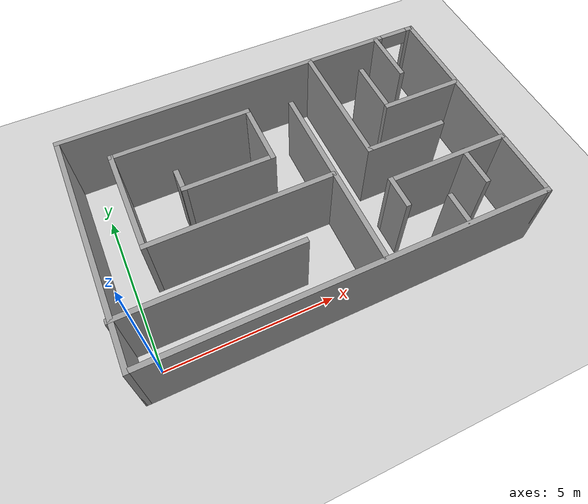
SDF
<sdf version="1.7">
 <world name="default">
  <light name="sun" type="directional">
   <pose>0 0 10 0 -0 0</pose>
   <diffuse>0.8 0.8 0.8 1</diffuse>
   <specular>0.2 0.2 0.2 1</specular>
   <attenuation>
    <range>1000</range>
    <constant>0.9</constant>
    <linear>0.01</linear>
    <quadratic>0.001</quadratic>
   </attenuation>
   <direction>-0.5 0.1 -0.9</direction>
   <spot><inner_angle>0</inner_angle><outer_angle>0</outer_angle><falloff>0</falloff></spot>
  </light>
  <model name="ground_plane">
   <static>1</static>
   <link name="link">
    <collision name="collision">
     <geometry><plane><normal>0 0 1</normal><size>100 100</size></plane></geometry>
     <surface><friction><ode><mu>100</mu><mu2>50</mu2></ode></friction></surface>
    </collision>
    <visual name="visual">
     <cast_shadows>0</cast_shadows>
     <geometry><plane><normal>0 0 1</normal><size>100 100</size></plane></geometry>
     <material>
      <script><uri>file://media/materials/scripts/gazebo.material</uri><name>Gazebo/Grey</name></script>
     </material>
    </visual>
   </link>
  </model>
  <gravity>0 0 -9.8</gravity>
  <magnetic_field>6e-06 2.3e-05 -4.2e-05</magnetic_field>
  <atmosphere type="adiabatic"/>
  <physics type="ode">
   <max_step_size>0.001</max_step_size>
   <real_time_factor>1</real_time_factor>
   <real_time_update_rate>1000</real_time_update_rate>
  </physics>
  <scene><ambient>0.4 0.4 0.4 1</ambient><background>0.7 0.7 0.7 1</background><shadows>1</shadows></scene>
  <audio><device>default</device></audio>
  <spherical_coordinates>
   <surface_model>EARTH_WGS84</surface_model>
   <latitude_deg>0</latitude_deg>
   <longitude_deg>0</longitude_deg>
   <elevation>0</elevation>
   <heading_deg>0</heading_deg>
  </spherical_coordinates>
  <model name="my_robot">
   <link name="base_footlink">
    <inertial>
     <pose>0.022463 0 0.208955 0 -0 0</pose>
     <mass>6.7</mass>
     <inertia>
      <ixx>0.699464</ixx>
      <ixy>0</ixy>
      <ixz>0.0143478</ixz>
      <iyy>0.931095</iyy>
      <iyz>-4.72128e-19</iyz>
      <izz>0.368714</izz>
     </inertia>
    </inertial>
    <collision name="base_footlink_fixed_joint_lump__base_link_collision">
     <pose>0 0 0.2 0 -0 0</pose>
     <geometry><box><size>0.6 0.4 0.2</size></box></geometry>
    </collision>
    <collision name="base_footlink_fixed_joint_lump__camera_link_collision_1">
     <pose>0.305 0 0.2 0 -0 0</pose>
     <geometry><box><size>0.01 0.1 0.05</size></box></geometry>
    </collision>
    <collision name="base_footlink_fixed_joint_lump__caster_wheel_link_collision_2">
     <pose>0.2 0 0.05 0 -0 0</pose>
     <geometry><sphere><radius>0.05</radius></sphere></geometry>
     <surface><friction><ode><mu>0.1</mu><mu2>0.1</mu2></ode></friction></surface>
    </collision>
    <collision name="base_footlink_fixed_joint_lump__imu_link_collision_3">
     <pose>0.2 0 0.3 3.14159 1.57079 3.14159</pose>
     <geometry><box><size>0.01 0.1 0.05</size></box></geometry>
    </collision>
    <collision name="base_footlink_fixed_joint_lump__lidar_link_collision_4">
     <pose>0 0 0.325 0 -0 0</pose>
     <geometry><cylinder><length>0.05</length><radius>0.05</radius></cylinder></geometry>
    </collision>
    <visual name="base_footlink_fixed_joint_lump__base_link_visual">
     <pose>0 0 0.2 0 -0 0</pose>
     <geometry><box><size>0.6 0.4 0.2</size></box></geometry>
     <material>
      <script><name>Gazebo/Blue</name><uri>file://media/materials/scripts/gazebo.material</uri></script>
     </material>
    </visual>
    <visual name="base_footlink_fixed_joint_lump__camera_link_visual_1">
     <pose>0.305 0 0.2 0 -0 0</pose>
     <geometry><box><size>0.01 0.1 0.05</size></box></geometry>
     <material>
      <script><name>Gazebo/Red</name><uri>file://media/materials/scripts/gazebo.material</uri></script>
     </material>
    </visual>
    <visual name="base_footlink_fixed_joint_lump__caster_wheel_link_visual_2">
     <pose>0.2 0 0.05 0 -0 0</pose>
     <geometry><sphere><radius>0.05</radius></sphere></geometry>
     <material>
      <script><name>Gazebo/Gray</name><uri>file://media/materials/scripts/gazebo.material</uri></script>
     </material>
    </visual>
    <visual name="base_footlink_fixed_joint_lump__imu_link_visual_3">
     <pose>0.2 0 0.3 3.14159 1.57079 3.14159</pose>
     <geometry><box><size>0.01 0.1 0.05</size></box></geometry>
     <material>
      <script><name>Gazebo/Red</name><uri>file://media/materials/scripts/gazebo.material</uri></script>
     </material>
    </visual>
    <visual name="base_footlink_fixed_joint_lump__lidar_link_visual_4">
     <pose>0 0 0.325 0 -0 0</pose>
     <geometry><cylinder><length>0.05</length><radius>0.05</radius></cylinder></geometry>
     <material>
      <script><name>Gazebo/Red</name><uri>file://media/materials/scripts/gazebo.material</uri></script>
     </material>
    </visual>
    <sensor name="camera_sensor" type="camera">
     <visualize>1</visualize>
     <update_rate>10</update_rate>
     <plugin name="camera_controller" filename="libgazebo_ros_camera.so">
      <frame_name>camera_link</frame_name>
     </plugin>
     <pose>0.305 0 0.2 0 -0 0</pose>
     <camera>
      <horizontal_fov>1.047</horizontal_fov>
      <image><width>320</width><height>240</height></image>
      <clip><near>0.1</near><far>100</far></clip>
     </camera>
    </sensor>
    <sensor name="my_imu" type="imu">
     <always_on>1</always_on>
     <update_rate>100</update_rate>
     <plugin name="imu_link" filename="libgazebo_ros_imu_sensor.so">
      <ros><remapping>~/out:=imu</remapping></ros>
     </plugin>
     <pose>0.2 0 0.3 3.14159 1.57079 3.14159</pose>
    </sensor>
    <sensor name="laser" type="ray">
     <visualize>1</visualize>
     <update_rate>10</update_rate>
     <ray>
      <scan>
       <horizontal>
        <samples>360</samples>
        <resolution>1</resolution>
        <min_angle>-3.14</min_angle>
        <max_angle>3.14</max_angle>
       </horizontal>
       <vertical><samples>1</samples><min_angle>0</min_angle><max_angle>0</max_angle></vertical>
      </scan>
      <range><min>0.3</min><max>12</max><resolution>0.01</resolution></range>
      <noise><type>gaussian</type><mean>0</mean><stddev>0.01</stddev></noise>
     </ray>
     <plugin name="lidar" filename="libgazebo_ros_ray_sensor.so">
      <ros><remapping>~/out:=scan</remapping></ros>
      <output_type>sensor_msgs/LaserScan</output_type>
      <frame_name>lidar_link</frame_name>
     </plugin>
     <pose>0 0 0.325 0 -0 0</pose>
    </sensor>
   </link>
   <joint name="base_left_wheel_joint" type="revolute">
    <pose relative_to="base_footlink">-0.15 -0.225 0.1 0 -0 0</pose>
    <parent>base_footlink</parent>
    <child>left_wheel_link</child>
    <axis>
     <xyz>0 1 0</xyz>
     <limit><lower>-1e+16</lower><upper>1e+16</upper></limit>
     <dynamics><spring_reference>0</spring_reference><spring_stiffness>0</spring_stiffness></dynamics>
    </axis>
   </joint>
   <link name="left_wheel_link">
    <pose relative_to="base_left_wheel_joint">0 0 0 0 -0 0</pose>
    <inertial>
     <pose>0 0 0 1.5708 -0 0</pose>
     <mass>1</mass>
     <inertia><ixx>0.0108333</ixx><ixy>0</ixy><ixz>0</ixz><iyy>0.0108333</iyy><iyz>0</iyz><izz>0.02</izz></inertia>
    </inertial>
    <collision name="left_wheel_link_collision">
     <pose>0 0 0 1.5708 -0 0</pose>
     <geometry><cylinder><length>0.05</length><radius>0.1</radius></cylinder></geometry>
    </collision>
    <visual name="left_wheel_link_visual">
     <pose>0 0 0 1.5708 -0 0</pose>
     <geometry><cylinder><length>0.05</length><radius>0.1</radius></cylinder></geometry>
     <material>
      <script><name>Gazebo/Gray</name><uri>file://media/materials/scripts/gazebo.material</uri></script>
     </material>
    </visual>
   </link>
   <joint name="base_right_wheel_joint" type="revolute">
    <pose relative_to="base_footlink">-0.15 0.225 0.1 0 -0 0</pose>
    <parent>base_footlink</parent>
    <child>right_wheel_link</child>
    <axis>
     <xyz>0 1 0</xyz>
     <limit><lower>-1e+16</lower><upper>1e+16</upper></limit>
     <dynamics><spring_reference>0</spring_reference><spring_stiffness>0</spring_stiffness></dynamics>
    </axis>
   </joint>
   <link name="right_wheel_link">
    <pose relative_to="base_right_wheel_joint">0 0 0 0 -0 0</pose>
    <inertial>
     <pose>0 0 0 1.5708 -0 0</pose>
     <mass>1</mass>
     <inertia><ixx>0.0108333</ixx><ixy>0</ixy><ixz>0</ixz><iyy>0.0108333</iyy><iyz>0</iyz><izz>0.02</izz></inertia>
    </inertial>
    <collision name="right_wheel_link_collision">
     <pose>0 0 0 1.5708 -0 0</pose>
     <geometry><cylinder><length>0.05</length><radius>0.1</radius></cylinder></geometry>
    </collision>
    <visual name="right_wheel_link_visual">
     <pose>0 0 0 1.5708 -0 0</pose>
     <geometry><cylinder><length>0.05</length><radius>0.1</radius></cylinder></geometry>
     <material>
      <script><name>Gazebo/Gray</name><uri>file://media/materials/scripts/gazebo.material</uri></script>
     </material>
    </visual>
   </link>
   <static>0</static>
   <plugin name="diff_drive_controller" filename="libgazebo_ros_diff_drive.so">
    <update_rate>50</update_rate>
    <left_joint>base_left_wheel_joint</left_joint>
    <right_joint>base_right_wheel_joint</right_joint>
    <wheel_separation>0.45</wheel_separation>
    <wheel_diameter>0.2</wheel_diameter>
    <publish_odom>1</publish_odom>
    <publish_odom_tf>1</publish_odom_tf>
    <publish_wheel_tf>1</publish_wheel_tf>
    <odometry_topic>odom</odometry_topic>
    <odometry_frame>odom</odometry_frame>
    <robot_base_frame>base_footlink</robot_base_frame>
   </plugin>
   <pose>0.005848 5e-06 0 0 0 -0.003963</pose>
  </model>
  <model name="Untitled">
   <pose>5.20563 2.96955 0 0 -0 0</pose>
   <link name="Wall_10">
    <collision name="Wall_10_Collision">
     <geometry><box><size>11.75 0.15 2.5</size></box></geometry>
     <pose>0 0 1.25 0 -0 0</pose>
    </collision>
    <visual name="Wall_10_Visual">
     <pose>0 0 1.25 0 -0 0</pose>
     <geometry><box><size>11.75 0.15 2.5</size></box></geometry>
     <material>
      <script><uri>file://media/materials/scripts/gazebo.material</uri><name>Gazebo/Grey</name></script>
      <ambient>1 1 1 1</ambient>
     </material>
     <meta><layer>0</layer></meta>
    </visual>
    <pose>0.026235 -3.55 0 0 -0 0</pose>
   </link>
   <link name="Wall_11">
    <collision name="Wall_11_Collision">
     <geometry><box><size>7.25 0.15 2.5</size></box></geometry>
     <pose>0 0 1.25 0 -0 0</pose>
    </collision>
    <visual name="Wall_11_Visual">
     <pose>0 0 1.25 0 -0 0</pose>
     <geometry><box><size>7.25 0.15 2.5</size></box></geometry>
     <material>
      <script><uri>file://media/materials/scripts/gazebo.material</uri><name>Gazebo/Grey</name></script>
      <ambient>1 1 1 1</ambient>
     </material>
     <meta><layer>0</layer></meta>
    </visual>
    <pose>5.82623 0 0 0 -0 1.5708</pose>
   </link>
   <link name="Wall_12">
    <pose>0.026235 3.55 0 0 -0 3.14159</pose>
    <visual name="Wall_12_Visual_0">
     <pose>-5.73689 0 1.25 0 -0 0</pose>
     <geometry><box><size>0.276221 0.15 2.5</size></box></geometry>
     <material>
      <script><uri>file://media/materials/scripts/gazebo.material</uri><name>Gazebo/Grey</name></script>
      <ambient>1 1 1 1</ambient>
     </material>
     <meta><layer>0</layer></meta>
    </visual>
    <collision name="Wall_12_Collision_0">
     <geometry><box><size>0.276221 0.15 2.5</size></box></geometry>
     <pose>-5.73689 0 1.25 0 -0 0</pose>
    </collision>
    <visual name="Wall_12_Visual_1">
     <pose>0.588111 0 1.25 0 -0 0</pose>
     <geometry><box><size>10.5738 0.15 2.5</size></box></geometry>
     <material>
      <script><uri>file://media/materials/scripts/gazebo.material</uri><name>Gazebo/Grey</name></script>
      <ambient>1 1 1 1</ambient>
     </material>
     <meta><layer>0</layer></meta>
    </visual>
    <collision name="Wall_12_Collision_1">
     <geometry><box><size>10.5738 0.15 2.5</size></box></geometry>
     <pose>0.588111 0 1.25 0 -0 0</pose>
    </collision>
    <visual name="Wall_12_Visual_2">
     <pose>-5.14878 0 2.25 0 -0 0</pose>
     <geometry><box><size>0.9 0.15 0.5</size></box></geometry>
     <material>
      <script><uri>file://media/materials/scripts/gazebo.material</uri><name>Gazebo/Grey</name></script>
      <ambient>1 1 1 1</ambient>
     </material>
     <meta><layer>0</layer></meta>
    </visual>
    <collision name="Wall_12_Collision_2">
     <geometry><box><size>0.9 0.15 0.5</size></box></geometry>
     <pose>-5.14878 0 2.25 0 -0 0</pose>
    </collision>
   </link>
   <link name="Wall_13">
    <collision name="Wall_13_Collision">
     <geometry><box><size>7.25 0.15 2.5</size></box></geometry>
     <pose>0 0 1.25 0 -0 0</pose>
    </collision>
    <visual name="Wall_13_Visual">
     <pose>0 0 1.25 0 -0 0</pose>
     <geometry><box><size>7.25 0.15 2.5</size></box></geometry>
     <material>
      <script><uri>file://media/materials/scripts/gazebo.material</uri><name>Gazebo/Grey</name></script>
      <ambient>1 1 1 1</ambient>
     </material>
     <meta><layer>0</layer></meta>
    </visual>
    <pose>-5.77377 0 0 0 -0 -1.5708</pose>
   </link>
   <link name="Wall_16">
    <collision name="Wall_16_Collision">
     <geometry><box><size>5.25 0.15 2.5</size></box></geometry>
     <pose>0 0 1.25 0 -0 0</pose>
    </collision>
    <visual name="Wall_16_Visual">
     <pose>0 0 1.25 0 -0 0</pose>
     <geometry><box><size>5.25 0.15 2.5</size></box></geometry>
     <material>
      <script><uri>file://media/materials/scripts/gazebo.material</uri><name>Gazebo/Grey</name></script>
      <ambient>1 1 1 1</ambient>
     </material>
     <meta><layer>0</layer></meta>
    </visual>
    <pose>-3.27624 -2.22076 0 0 -0 0</pose>
   </link>
   <link name="Wall_18">
    <collision name="Wall_18_Collision">
     <geometry><box><size>5.75 0.15 2.5</size></box></geometry>
     <pose>0 0 1.25 0 -0 0</pose>
    </collision>
    <visual name="Wall_18_Visual">
     <pose>0 0 1.25 0 -0 0</pose>
     <geometry><box><size>5.75 0.15 2.5</size></box></geometry>
     <material>
      <script><uri>file://media/materials/scripts/gazebo.material</uri><name>Gazebo/Grey</name></script>
      <ambient>1 1 1 1</ambient>
     </material>
     <meta><layer>0</layer></meta>
    </visual>
    <pose>0.889948 -0.66255 0 0 -0 1.5708</pose>
   </link>
   <link name="Wall_20">
    <collision name="Wall_20_Collision">
     <geometry><box><size>5.5 0.15 2.5</size></box></geometry>
     <pose>0 0 1.25 0 -0 0</pose>
    </collision>
    <visual name="Wall_20_Visual">
     <pose>0 0 1.25 0 -0 0</pose>
     <geometry><box><size>5.5 0.15 2.5</size></box></geometry>
     <material>
      <script><uri>file://media/materials/scripts/gazebo.material</uri><name>Gazebo/Grey</name></script>
      <ambient>1 1 1 1</ambient>
     </material>
     <meta><layer>0</layer></meta>
    </visual>
    <pose>-1.83752 -0.66414 0 0 -0 3.14159</pose>
   </link>
   <link name="Wall_21">
    <collision name="Wall_21_Collision">
     <geometry><box><size>3.25 0.15 2.5</size></box></geometry>
     <pose>0 0 1.25 0 -0 0</pose>
    </collision>
    <visual name="Wall_21_Visual">
     <pose>0 0 1.25 0 -0 0</pose>
     <geometry><box><size>3.25 0.15 2.5</size></box></geometry>
     <material>
      <script><uri>file://media/materials/scripts/gazebo.material</uri><name>Gazebo/Grey</name></script>
      <ambient>1 1 1 1</ambient>
     </material>
     <meta><layer>0</layer></meta>
    </visual>
    <pose>-4.51252 0.88586 0 0 -0 1.5708</pose>
   </link>
   <link name="Wall_22">
    <collision name="Wall_22_Collision">
     <geometry><box><size>4.25 0.15 2.5</size></box></geometry>
     <pose>0 0 1.25 0 -0 0</pose>
    </collision>
    <visual name="Wall_22_Visual">
     <pose>0 0 1.25 0 -0 0</pose>
     <geometry><box><size>4.25 0.15 2.5</size></box></geometry>
     <material>
      <script><uri>file://media/materials/scripts/gazebo.material</uri><name>Gazebo/Grey</name></script>
      <ambient>1 1 1 1</ambient>
     </material>
     <meta><layer>0</layer></meta>
    </visual>
    <pose>-2.46252 2.43586 0 0 -0 0</pose>
   </link>
   <link name="Wall_23">
    <collision name="Wall_23_Collision">
     <geometry><box><size>2 0.15 2.5</size></box></geometry>
     <pose>0 0 1.25 0 -0 0</pose>
    </collision>
    <visual name="Wall_23_Visual">
     <pose>0 0 1.25 0 -0 0</pose>
     <geometry><box><size>2 0.15 2.5</size></box></geometry>
     <material>
      <script><uri>file://media/materials/scripts/gazebo.material</uri><name>Gazebo/Grey</name></script>
      <ambient>1 1 1 1</ambient>
     </material>
     <meta><layer>0</layer></meta>
    </visual>
    <pose>-0.412522 1.51086 0 0 -0 -1.5708</pose>
   </link>
   <link name="Wall_24">
    <collision name="Wall_24_Collision">
     <geometry><box><size>2.75 0.15 2.5</size></box></geometry>
     <pose>0 0 1.25 0 -0 0</pose>
    </collision>
    <visual name="Wall_24_Visual">
     <pose>0 0 1.25 0 -0 0</pose>
     <geometry><box><size>2.75 0.15 2.5</size></box></geometry>
     <material>
      <script><uri>file://media/materials/scripts/gazebo.material</uri><name>Gazebo/Grey</name></script>
      <ambient>1 1 1 1</ambient>
     </material>
     <meta><layer>0</layer></meta>
    </visual>
    <pose>-1.71252 0.58586 0 0 -0 3.14159</pose>
   </link>
   <link name="Wall_25">
    <collision name="Wall_25_Collision">
     <geometry><box><size>0.75 0.15 2.5</size></box></geometry>
     <pose>0 0 1.25 0 -0 0</pose>
    </collision>
    <visual name="Wall_25_Visual">
     <pose>0 0 1.25 0 -0 0</pose>
     <geometry><box><size>0.75 0.15 2.5</size></box></geometry>
     <material>
      <script><uri>file://media/materials/scripts/gazebo.material</uri><name>Gazebo/Grey</name></script>
      <ambient>1 1 1 1</ambient>
     </material>
     <meta><layer>0</layer></meta>
    </visual>
    <pose>-3.01252 0.88586 0 0 -0 1.5708</pose>
   </link>
   <link name="Wall_28">
    <collision name="Wall_28_Collision">
     <geometry><box><size>4 0.15 2.5</size></box></geometry>
     <pose>0 0 1.25 0 -0 0</pose>
    </collision>
    <visual name="Wall_28_Visual">
     <pose>0 0 1.25 0 -0 0</pose>
     <geometry><box><size>4 0.15 2.5</size></box></geometry>
     <material>
      <script><uri>file://media/materials/scripts/gazebo.material</uri><name>Gazebo/Grey</name></script>
      <ambient>1 1 1 1</ambient>
     </material>
     <meta><layer>0</layer></meta>
    </visual>
    <pose>2.14923 1.59099 0 0 -0 -1.5708</pose>
   </link>
   <link name="Wall_29">
    <collision name="Wall_29_Collision">
     <geometry><box><size>2.5 0.15 2.5</size></box></geometry>
     <pose>0 0 1.25 0 -0 0</pose>
    </collision>
    <visual name="Wall_29_Visual">
     <pose>0 0 1.25 0 -0 0</pose>
     <geometry><box><size>2.5 0.15 2.5</size></box></geometry>
     <material>
      <script><uri>file://media/materials/scripts/gazebo.material</uri><name>Gazebo/Grey</name></script>
      <ambient>1 1 1 1</ambient>
     </material>
     <meta><layer>0</layer></meta>
    </visual>
    <pose>3.32423 -0.334015 0 0 -0 0</pose>
   </link>
   <link name="Wall_31">
    <collision name="Wall_31_Collision">
     <geometry><box><size>2.5 0.15 2.5</size></box></geometry>
     <pose>0 0 1.25 0 -0 0</pose>
    </collision>
    <visual name="Wall_31_Visual">
     <pose>0 0 1.25 0 -0 0</pose>
     <geometry><box><size>2.5 0.15 2.5</size></box></geometry>
     <material>
      <script><uri>file://media/materials/scripts/gazebo.material</uri><name>Gazebo/Grey</name></script>
      <ambient>1 1 1 1</ambient>
     </material>
     <meta><layer>0</layer></meta>
    </visual>
    <pose>4.61217 0.874986 0 0 -0 3.14159</pose>
   </link>
   <link name="Wall_32">
    <collision name="Wall_32_Collision">
     <geometry><box><size>1.75 0.15 2.5</size></box></geometry>
     <pose>0 0 1.25 0 -0 0</pose>
    </collision>
    <visual name="Wall_32_Visual">
     <pose>0 0 1.25 0 -0 0</pose>
     <geometry><box><size>1.75 0.15 2.5</size></box></geometry>
     <material>
      <script><uri>file://media/materials/scripts/gazebo.material</uri><name>Gazebo/Grey</name></script>
      <ambient>1 1 1 1</ambient>
     </material>
     <meta><layer>0</layer></meta>
    </visual>
    <pose>3.43717 1.67499 0 0 -0 1.5708</pose>
   </link>
   <link name="Wall_34">
    <collision name="Wall_34_Collision">
     <geometry><box><size>1.75 0.15 2.5</size></box></geometry>
     <pose>0 0 1.25 0 -0 0</pose>
    </collision>
    <visual name="Wall_34_Visual">
     <pose>0 0 1.25 0 -0 0</pose>
     <geometry><box><size>1.75 0.15 2.5</size></box></geometry>
     <material>
      <script><uri>file://media/materials/scripts/gazebo.material</uri><name>Gazebo/Grey</name></script>
      <ambient>1 1 1 1</ambient>
     </material>
     <meta><layer>0</layer></meta>
    </visual>
    <pose>4.51039 2.73347 0 0 -0 -1.5708</pose>
   </link>
   <link name="Wall_36">
    <collision name="Wall_36_Collision">
     <geometry><box><size>3.75 0.15 2.5</size></box></geometry>
     <pose>0 0 1.25 0 -0 0</pose>
    </collision>
    <visual name="Wall_36_Visual">
     <pose>0 0 1.25 0 -0 0</pose>
     <geometry><box><size>3.75 0.15 2.5</size></box></geometry>
     <material>
      <script><uri>file://media/materials/scripts/gazebo.material</uri><name>Gazebo/Grey</name></script>
      <ambient>1 1 1 1</ambient>
     </material>
     <meta><layer>0</layer></meta>
    </visual>
    <pose>3.98421 -1.50366 0 0 -0 0</pose>
   </link>
   <link name="Wall_39">
    <collision name="Wall_39_Collision">
     <geometry><box><size>1 0.15 2.5</size></box></geometry>
     <pose>0 0 1.25 0 -0 0</pose>
    </collision>
    <visual name="Wall_39_Visual">
     <pose>0 0 1.25 0 -0 0</pose>
     <geometry><box><size>1 0.15 2.5</size></box></geometry>
     <material>
      <script><uri>file://media/materials/scripts/gazebo.material</uri><name>Gazebo/Grey</name></script>
      <ambient>1 1 1 1</ambient>
     </material>
     <meta><layer>0</layer></meta>
    </visual>
    <pose>2.18421 -1.92866 0 0 -0 -1.5708</pose>
   </link>
   <link name="Wall_41">
    <collision name="Wall_41_Collision">
     <geometry><box><size>1 0.15 2.5</size></box></geometry>
     <pose>0 0 1.25 0 -0 0</pose>
    </collision>
    <visual name="Wall_41_Visual">
     <pose>0 0 1.25 0 -0 0</pose>
     <geometry><box><size>1 0.15 2.5</size></box></geometry>
     <material>
      <script><uri>file://media/materials/scripts/gazebo.material</uri><name>Gazebo/Grey</name></script>
      <ambient>1 1 1 1</ambient>
     </material>
     <meta><layer>0</layer></meta>
    </visual>
    <pose>3.35605 -3.05504 0 0 -0 1.5708</pose>
   </link>
   <link name="Wall_43">
    <collision name="Wall_43_Collision">
     <geometry><box><size>1.25 0.15 2.5</size></box></geometry>
     <pose>0 0 1.25 0 -0 0</pose>
    </collision>
    <visual name="Wall_43_Visual">
     <pose>0 0 1.25 0 -0 0</pose>
     <geometry><box><size>1.25 0.15 2.5</size></box></geometry>
     <material>
      <script><uri>file://media/materials/scripts/gazebo.material</uri><name>Gazebo/Grey</name></script>
      <ambient>1 1 1 1</ambient>
     </material>
     <meta><layer>0</layer></meta>
    </visual>
    <pose>4.52788 -2.03617 0 0 -0 -1.5708</pose>
   </link>
   <static>1</static>
  </model>
 </world>
</sdf>
